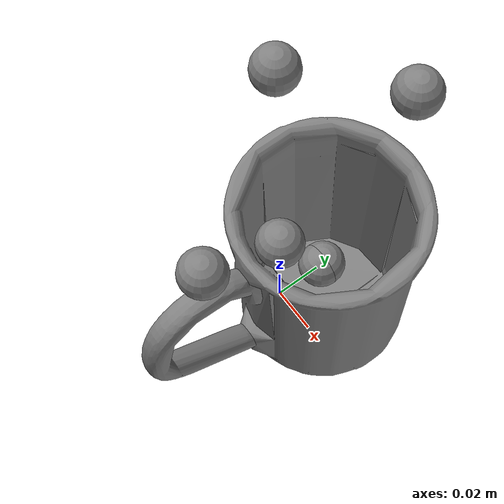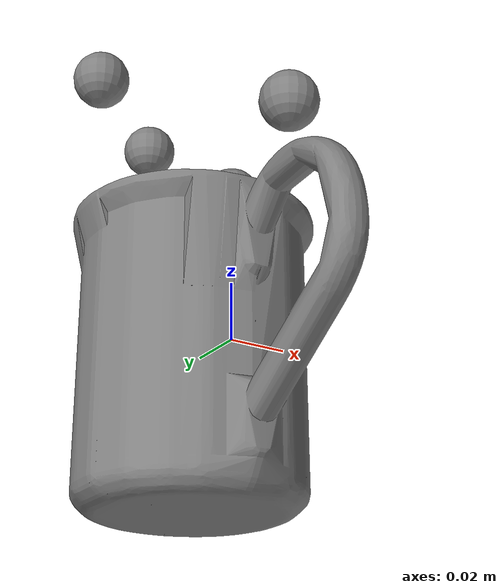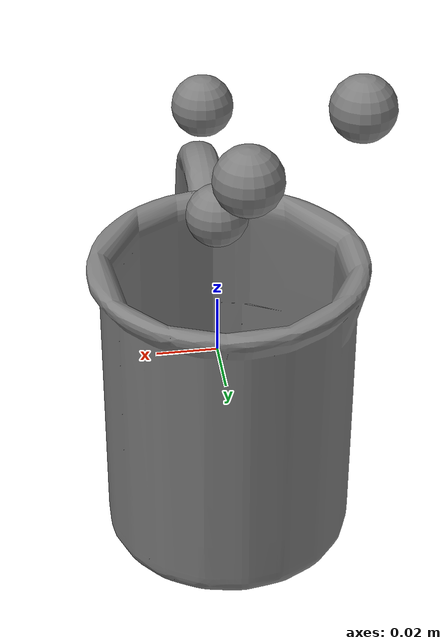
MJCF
<mujoco model="039_mug_9">
  <asset>
    <mesh name="039_mug_collision_9" file="039_mug_9.stl" scale="0.07 0.07 0.07"/>
  </asset>

  <worldbody>
<body name="039_mug_9">
  <geom name="039_mug_collision_9" type="mesh" mesh="039_mug_collision_9" />
  <site name="039_mug_9_keypoints_0" pos="0.0 0.061611900000000004 0.10091130000000001" size="0.01"/>
  <site name="039_mug_9_keypoints_1" pos="-0.038476760000000006 0.026622470000000002 0.10090073000000001" size="0.01"/>
  <site name="039_mug_9_keypoints_2" pos="0.0 -0.0349678 0.07149100000000001" size="0.01"/>
  <site name="039_mug_9_keypoints_3" pos="0.0 0.022594740000000002 6.86e-06" size="0.01"/>
  <site name="039_mug_9_keypoints_4" pos="0.0 0.02367596 7.14e-06" size="0.01"/>
  <site name="039_mug_9_keypoints_5" pos="0.0 1.5680000000000002e-05 0.051907520000000006" size="0.01"/>
</body>
  </worldbody>
</mujoco>
